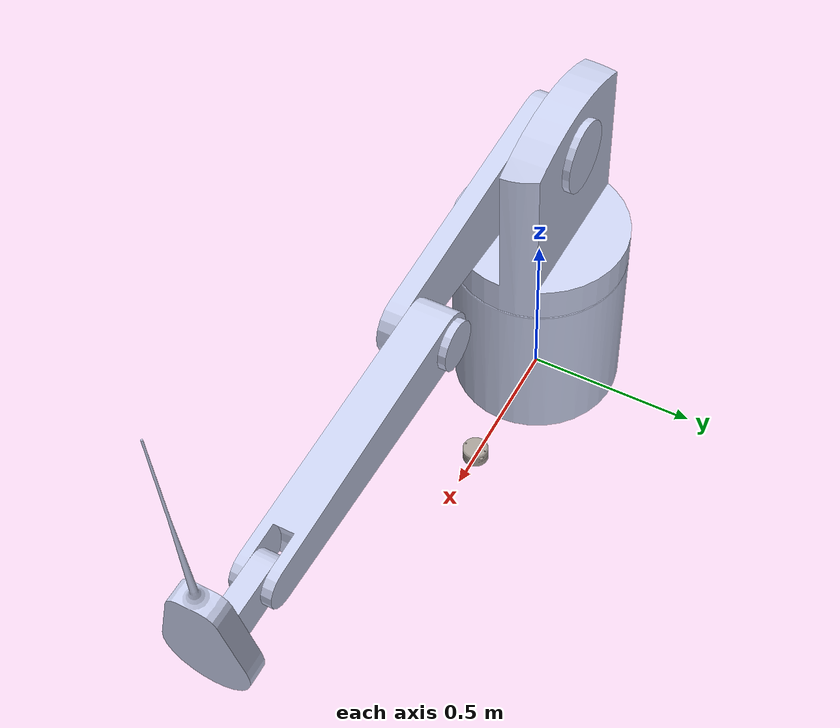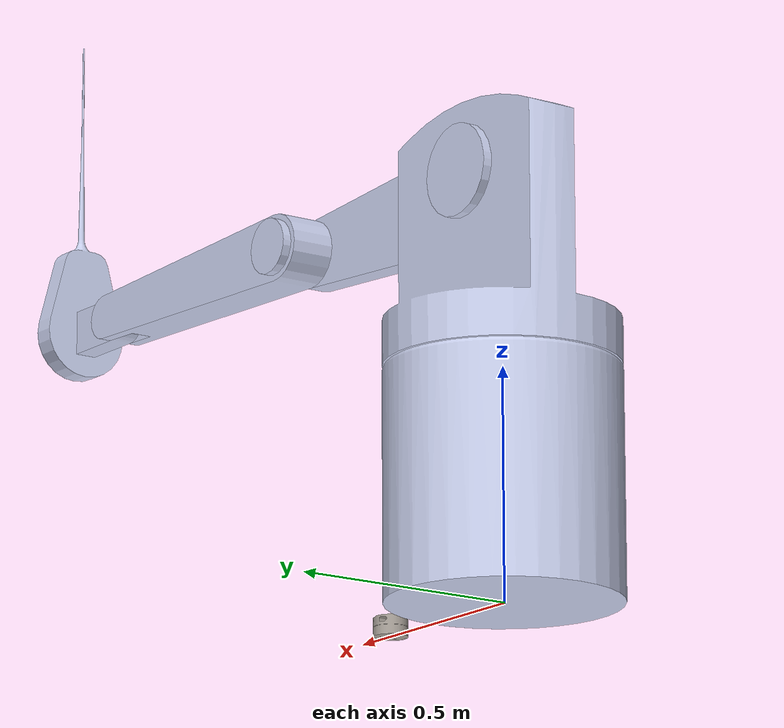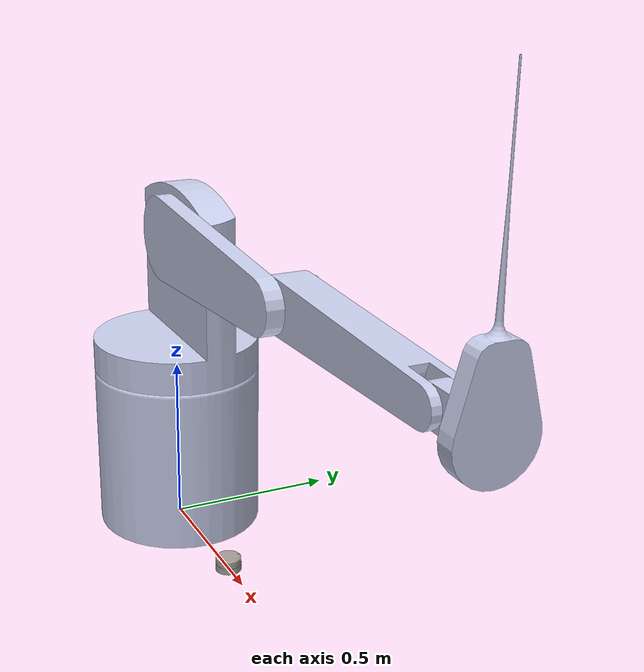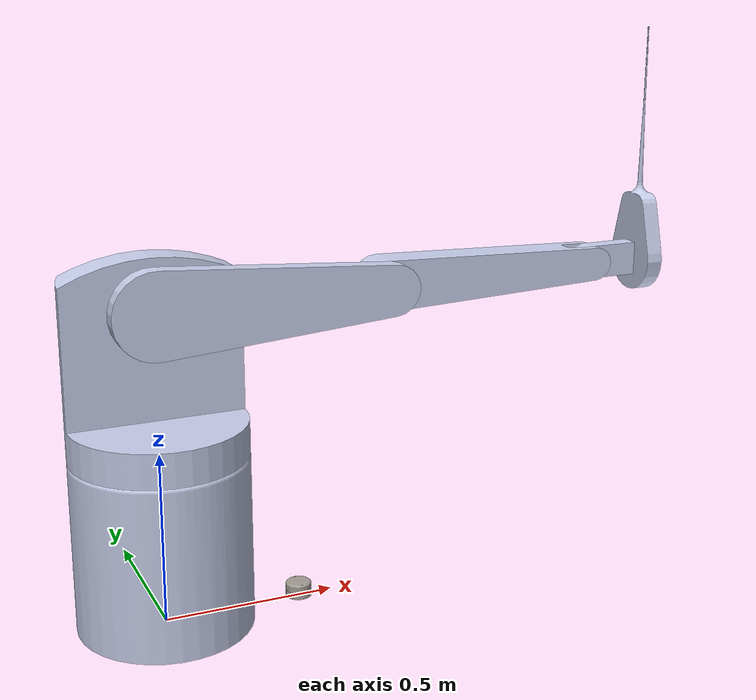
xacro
<?xml version="1.0"?>
<!-- Name your robot here -->
<robot name ="" xmlns:xacro="http://wiki.ros.org/xacro">

<!-- Include your urdf files here -->
	<!-- Include Robot's urdf filepath -->
	<!-- Include Lidar's urdf filepath -->

	<xacro:include filename="finale1.urdf"/>
	<xacro:include filename="ydlidar.urdf"/>

<!-- Add your gazebo sensors here -->
	<gazebo reference="base_laser">
    <sensor name="head_hokuyo_sensor" type="ray">
      <pose>0 0 0 0 0 0</pose>
      <visualize>false</visualize>
      <update_rate>40</update_rate>
      <ray>
        <scan>
          <horizontal>
            <samples>720</samples>
            <resolution>1</resolution>
            <min_angle>-1.570796</min_angle>
            <max_angle>1.570796</max_angle>
          </horizontal>
        </scan>
        <range>
          <min>0.8</min>
          <max>30.0</max>
          <resolution>0.01</resolution>
        </range>
        <noise>
          <type>gaussian</type>
          <mean>0.0</mean>
          <stddev>0.01</stddev>
        </noise>
      </ray>
      <plugin filename="libgazebo_ros_laser.so" name="gazebo_ros_head_hokuyo_controller">
        <topicName>/laser/scan</topicName>
        <frameName>laser_frame</frameName>
      </plugin>
    </sensor>
  </gazebo>

<!--  Gazebo plugin for control here is already added for you -->
	<gazebo>
		<plugin name="gazebo_ros_control" filename="libgazebo_ros_control.so">
			<robotNamespace>/finalec</robotNamespace>
			<robotSimType>gazebo_ros_control/DefaultRobotHWSim</robotSimType>
			<legacyModeNS>true</legacyModeNS>
		</plugin>
	</gazebo>

<!-- Create a joint between your robot and sensor -->
	<joint name="sensor_joint" type="fixed">
    <parent link="dummy_link"/>
    <child link="base_laser"/>
    <origin xyz="0.4 0 0"/>
  </joint>

</robot>

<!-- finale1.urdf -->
<robot
  name="finale">
    <link name="dummy_link">
  </link>
  <joint name="dummy_joint" type="fixed">
    <parent link="dummy_link"/>
    <child link="base"/>
    <origin xyz="0 0 0"
    rpy="0 0 1.5708"/>
    <dynamics
      damping="1"
      friction="10" />
    </joint>
  <link
    name="base">
    <inertial>
      <origin
        xyz="1.4664E-35 0.25663 4.3211E-18"
        rpy="0 0 0" />
      <mass
        value="10" />
      <inertia
        ixx="3.7675"
        ixy="-1.3499E-32"
        ixz="-6.0156E-34"
        iyy="3.0851"
        iyz="-7.7131E-18"
        izz="3.7675" />
    </inertial>
    <visual>
      <origin
        xyz="0 0 0"
        rpy="0 0 0" />
      <geometry>
        <mesh
          filename="package://finale/meshes/base.STL" />
      </geometry>
      <material
        name="">
        <color
          rgba="0.79216 0.81961 0.93333 1" />
      </material>
    </visual>
    <collision>
      <origin
        xyz="0 0 0"
        rpy="0 0 0" />
      <geometry>
        <mesh
          filename="package://finale/meshes/base.STL" />
      </geometry>
    </collision>
  </link>
  <link
    name="link1">
    <inertial>
      <origin
        xyz="-0.026185 0.19022 -1.0617E-09"
        rpy="0 0 0" />
      <mass
        value="0.005" />
      <inertia
        ixx="1"
        ixy="1"
        ixz="1"
        iyy="1"
        iyz="1"
        izz="1" />
    </inertial>
    <visual>
      <origin
        xyz="0 0 0"
        rpy="0 0 0" />
      <geometry>
        <mesh
          filename="package://finale/meshes/link1.STL" />
      </geometry>
      <material
        name="">
        <color
          rgba="0.79216 0.81961 0.93333 1" />
      </material>
    </visual>
    <collision>
      <origin
        xyz="0 0 0"
        rpy="0 0 0" />
      <geometry>
        <mesh
          filename="package://finale/meshes/link1.STL" />
      </geometry>
    </collision>
  </link>
  <joint
    name="j1"
    type="revolute">
    <origin
      xyz="0 0 0.5"
      rpy="1.5708 0 -3.1416" />
    <parent
      link="base" />
    <child
      link="link1" />
    <axis
      xyz="0 1 0" />
    <limit
      lower="-3.14"
      upper="3.14"
      effort="100"
      velocity="0.1" />
    <dynamics
      damping="1"
      friction="1" />
  </joint>
  <link
    name="link2">
    <inertial>
      <origin
        xyz="0.26245 1.1102E-16 0.0007544"
        rpy="0 0 0" />
      <mass
        value="0.005" />
      <inertia
        ixx="10"
        ixy="10"
        ixz="10"
        iyy="10"
        iyz="10"
        izz="10" />
    </inertial>
    <visual>
      <origin
        xyz="0 0 0"
        rpy="0 0 0" />
      <geometry>
        <mesh
          filename="package://finale/meshes/link2.STL" />
      </geometry>
      <material
        name="">
        <color
          rgba="0.79216 0.81961 0.93333 1" />
      </material>
    </visual>
    <collision>
      <origin
        xyz="0 0 0"
        rpy="0 0 0" />
      <geometry>
        <mesh
          filename="package://finale/meshes/link2.STL" />
      </geometry>
    </collision>
  </link>
  <joint
    name="j2"
    type="revolute">
    <origin
      xyz="0 0.405 0"
      rpy="3.1416 1.5708 0" />
    <parent
      link="link1" />
    <child
      link="link2" />
    <axis
      xyz="0 0 1" />
    <limit
      lower="-3.14"
      upper="3.14"
      effort="100"
      velocity="0.1" />
    <dynamics
      damping="1"
      friction="1" />
  </joint>
  <link
    name="link3">
    <inertial>
      <origin
        xyz="0.30975 0 0.05"
        rpy="0 0 0" />
      <mass
        value="0.005" />
      <inertia
        ixx="10"
        ixy="10"
        ixz="10"
        iyy="10"
        iyz="10"
        izz="10" />
    </inertial>
    <visual>
      <origin
        xyz="0 0 0"
        rpy="0 0 0" />
      <geometry>
        <mesh
          filename="package://finale/meshes/link3.STL" />
      </geometry>
      <material
        name="">
        <color
          rgba="0.79216 0.81961 0.93333 1" />
      </material>
    </visual>
    <collision>
      <origin
        xyz="0 0 0"
        rpy="0 0 0" />
      <geometry>
        <mesh
          filename="package://finale/meshes/link3.STL" />
      </geometry>
    </collision>
  </link>
  <joint
    name="j3"
    type="revolute">
    <origin
      xyz="0.69 0 0"
      rpy="0 0 0" />
    <parent
      link="link2" />
    <child
      link="link3" />
    <axis
      xyz="0 0 1" />
    <limit
      lower="-3.14"
      upper="3.14"
      effort="100"
      velocity="0.1" />
    <dynamics
      damping="1"
      friction="1" />
  </joint>
  <link
    name="link4">
    <inertial>
      <origin
        xyz="0.071451 0 0.025"
        rpy="0 0 0" />
      <mass
        value="0.005" />
      <inertia
        ixx="10"
        ixy="10"
        ixz="10"
        iyy="10"
        iyz="10"
        izz="10" />
    </inertial>
    <visual>
      <origin
        xyz="0 0 0"
        rpy="0 0 0" />
      <geometry>
        <mesh
          filename="package://finale/meshes/link4.STL" />
      </geometry>
      <material
        name="">
        <color
          rgba="0.79216 0.81961 0.93333 1" />
      </material>
    </visual>
    <collision>
      <origin
        xyz="0 0 0"
        rpy="0 0 0" />
      <geometry>
        <mesh
          filename="package://finale/meshes/link4.STL" />
      </geometry>
    </collision>
  </link>
  <joint
    name="j4"
    type="revolute">
    <origin
      xyz="0.69 0 0.025"
      rpy="0 0 0" />
    <parent
      link="link3" />
    <child
      link="link4" />
    <axis
      xyz="0 0 1" />
    <limit
      lower="-3.14"
      upper="3.14"
      effort="100"
      velocity="0.1" />
    <dynamics
      damping="1"
      friction="1" />
  </joint>
  <link
    name="laser">
    <inertial>
      <origin
        xyz="0.04914 -0.025173 1.4399E-09"
        rpy="0 0 0" />
      <mass
        value="0.005" />
      <inertia
        ixx="10"
        ixy="10"
        ixz="10"
        iyy="10"
        iyz="10"
        izz="10" />
    </inertial>
    <visual>
      <origin
        xyz="0 0 0"
        rpy="0 0 0" />
      <geometry>
        <mesh
          filename="package://finale/meshes/laser.STL" />
      </geometry>
      <material
        name="">
        <color
          rgba="0.79216 0.81961 0.93333 1" />
      </material>
    </visual>
    <collision>
      <origin
        xyz="0 0 0"
        rpy="0 0 0" />
      <geometry>
        <mesh
          filename="package://finale/meshes/laser.STL" />
      </geometry>
    </collision>
  </link>
  <joint
    name="j5"
    type="revolute">
    <origin
      xyz="0.15 0 0.025"
      rpy="-3.1416 0 -1.5708" />
    <parent
      link="link4" />
    <child
      link="laser" />
    <axis
      xyz="0 1 0" />
    <limit
      lower="-3.14"
      upper="3.14"
      effort="100"
      velocity="0.1" />
    <dynamics
      damping="1"
      friction="1" />
  </joint>
    <transmission name="joint_1">
    <type>transmission_interface/SimpleTransmission</type>
    <joint name="j1">
      <hardwareInterface>hardware_interface/EffortJointInterface</hardwareInterface>
    </joint>
    <actuator name="motor_1">
      <hardwareInterface>hardware_interface/EffortJointInterface</hardwareInterface>
      <mechanicalReduction>1</mechanicalReduction>
    </actuator>
  </transmission>
  <transmission name="joint_2">
    <type>transmission_interface/SimpleTransmission</type>
    <joint name="j2">
      <hardwareInterface>hardware_interface/EffortJointInterface</hardwareInterface>
    </joint>
    <actuator name="motor_2">
      <hardwareInterface>hardware_interface/EffortJointInterface</hardwareInterface>
      <mechanicalReduction>1</mechanicalReduction>
    </actuator>
  </transmission>
  <transmission name="joint_3">
    <type>transmission_interface/SimpleTransmission</type>
    <joint name="j3">
      <hardwareInterface>hardware_interface/EffortJointInterface</hardwareInterface>
    </joint>
    <actuator name="motor_3">
      <hardwareInterface>hardware_interface/EffortJointInterface</hardwareInterface>
      <mechanicalReduction>1</mechanicalReduction>
    </actuator>
  </transmission>
  <transmission name="joint_4">
    <type>transmission_interface/SimpleTransmission</type>
    <joint name="j4">
      <hardwareInterface>hardware_interface/EffortJointInterface</hardwareInterface>
    </joint>
    <actuator name="motor_4">
      <hardwareInterface>hardware_interface/EffortJointInterface</hardwareInterface>
      <mechanicalReduction>1</mechanicalReduction>
    </actuator>
  </transmission>
  <transmission name="joint_5">
    <type>transmission_interface/SimpleTransmission</type>
    <joint name="j5">
      <hardwareInterface>hardware_interface/EffortJointInterface</hardwareInterface>
    </joint>
    <actuator name="motor_5">
      <hardwareInterface>hardware_interface/EffortJointInterface</hardwareInterface>
      <mechanicalReduction>1</mechanicalReduction>
    </actuator>
  </transmission>
</robot>

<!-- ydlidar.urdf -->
<robot
  name="ydlidar">
  <link
    name="base_laser">
    <inertial>
      <origin
        xyz="-0.00029774 0.0066667 0.00013047"
        rpy="0 0 0" />
      <mass
        value="0.15717" />
      <inertia
        ixx="6.7885E-05"
        ixy="-1.3987E-07"
        ixz="-8.1554E-07"
        iyy="0.00013173"
        iyz="-9.0932E-08"
        izz="7.1972E-05" />
    </inertial>
    <visual>
      <origin
        xyz="0 0 0"
        rpy="0 0 0" />
      <geometry>
        <mesh
          filename="package://ydlidar_ros/meshes/ydlidar.dae" />
      </geometry>
      <material
        name="">
        <color
          rgba="0.64706 0.61961 0.58824 1" />
      </material>
    </visual>
    <collision>
      <origin
        xyz="0 0 0"
        rpy="0 0 0" />
      <geometry>
        <mesh
          filename="package://ydlidar_ros/meshes/ydlidar.dae" />
      </geometry>
    </collision>
  </link>
  <link
    name="laser_frame">
    <inertial>
      <origin
        xyz="-0.00036659 0.00064155 -0.00027052"
        rpy="0 0 0" />
      <mass
        value="0.25482" />
      <inertia
        ixx="8.9194E-05"
        ixy="1.8116E-07"
        ixz="3.6435E-08"
        iyy="0.00018279"
        iyz="2.423E-07"
        izz="0.00011103" />
    </inertial>
  </link>
  <joint
    name="laser_joint"
    type="fixed">
    <origin
      xyz="0 0 0.03172"
      rpy="0 0 0" />
    <parent
      link="base_laser" />
    <child
      link="laser_frame" />
    <axis
      xyz="0 0 0" />
  </joint>
</robot>
